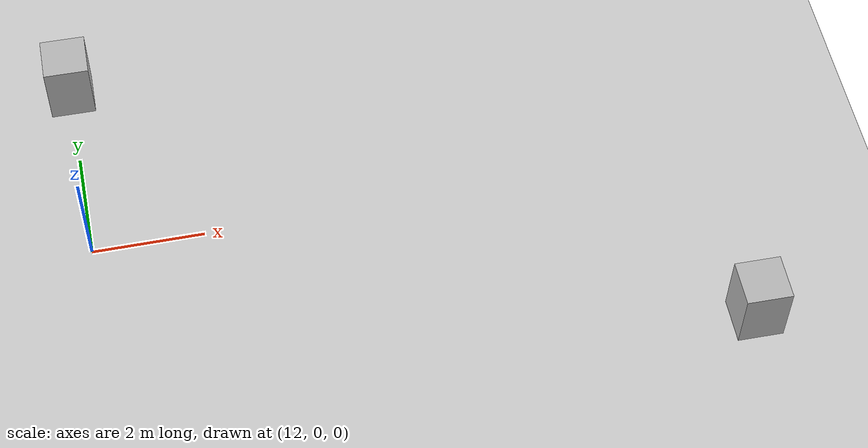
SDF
<?xml version="1.0"?>
<sdf version="1.6">
  <world name="v2-04d-cruise-s4601">
    <gravity>0 0 -9.81</gravity>
    <physics name="v2_deterministic" type="ode">
      <max_step_size>0.002</max_step_size>
      <real_time_update_rate>500</real_time_update_rate>
    </physics>
    <include>
      <uri>model://sun</uri>
    </include>
    <include>
      <uri>model://ground_plane</uri>
    </include>
    <model name="cruise-left">
      <static>true</static>
      <pose>12.004274994 3.483610722 0.600000000 0 0 -0.006741165</pose>
      <link name="link">
        <collision name="collision">
          <geometry>
            <box>
              <size>0.800000 0.800000 1.200000</size>
            </box>
          </geometry>
        </collision>
        <visual name="visual">
          <geometry>
            <box>
              <size>0.800000 0.800000 1.200000</size>
            </box>
          </geometry>
        </visual>
      </link>
    </model>
    <model name="cruise-right">
      <static>true</static>
      <pose>23.051555201 -3.520313978 0.600000000 0 0 -0.008117946</pose>
      <link name="link">
        <collision name="collision">
          <geometry>
            <box>
              <size>0.800000 0.800000 1.200000</size>
            </box>
          </geometry>
        </collision>
        <visual name="visual">
          <geometry>
            <box>
              <size>0.800000 0.800000 1.200000</size>
            </box>
          </geometry>
        </visual>
      </link>
    </model>
  </world>
</sdf>
